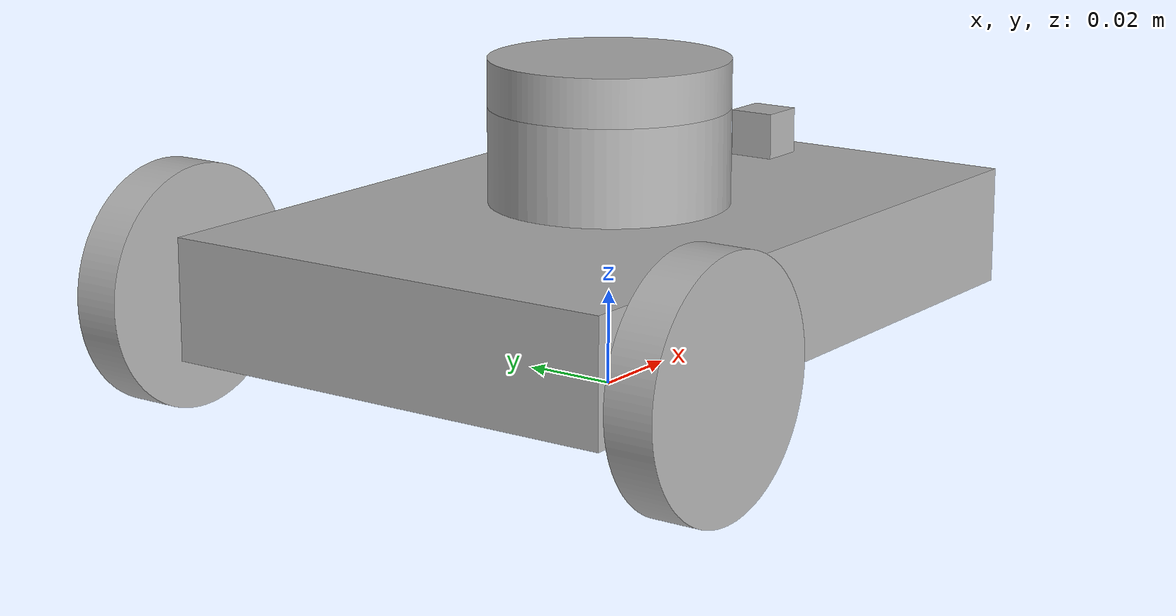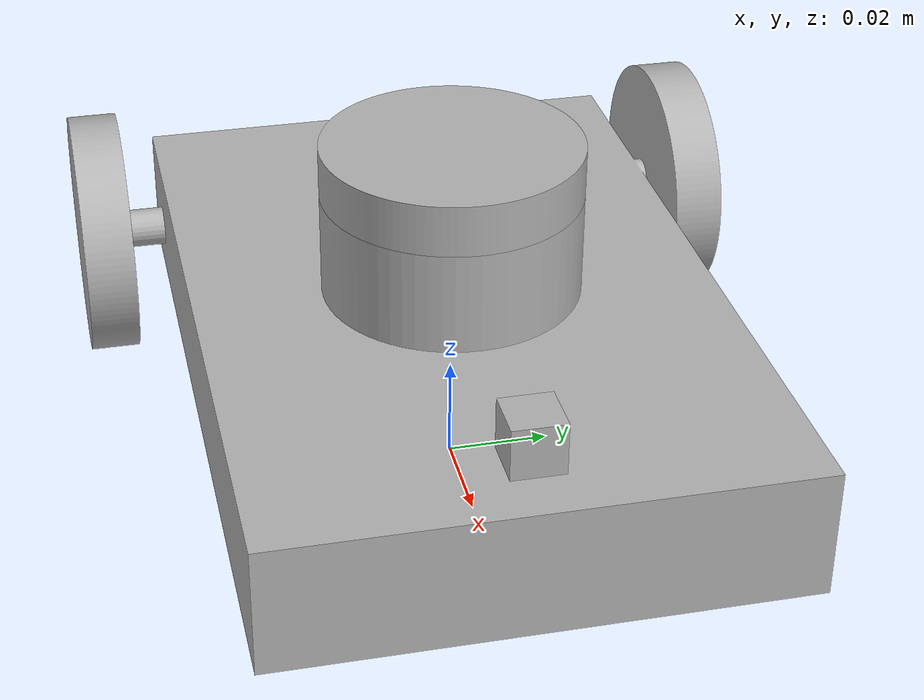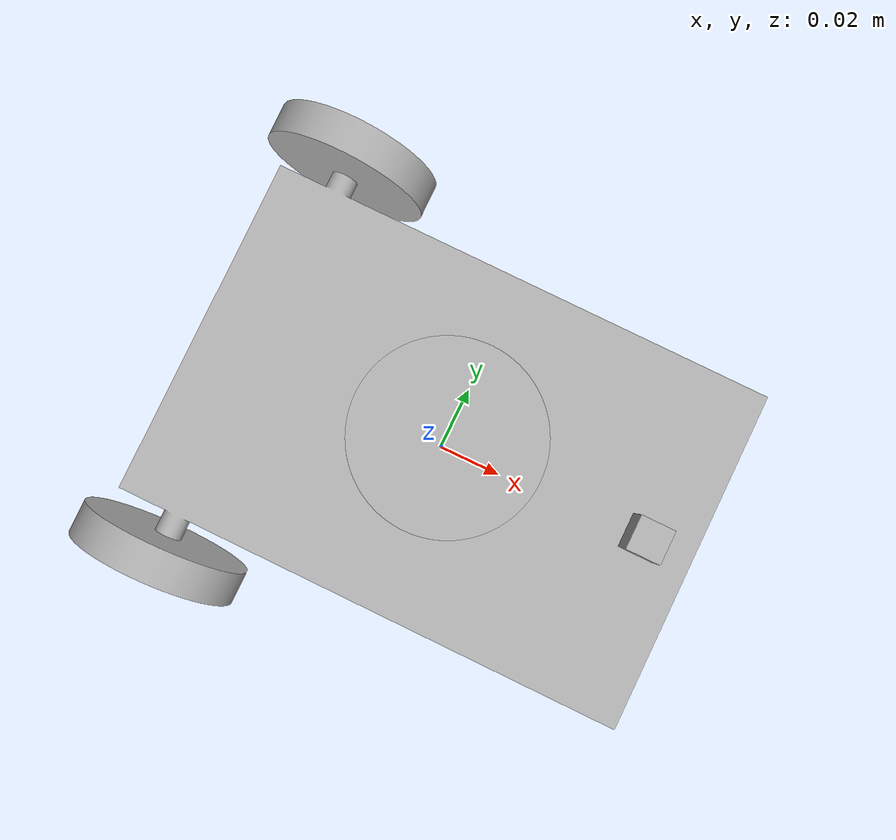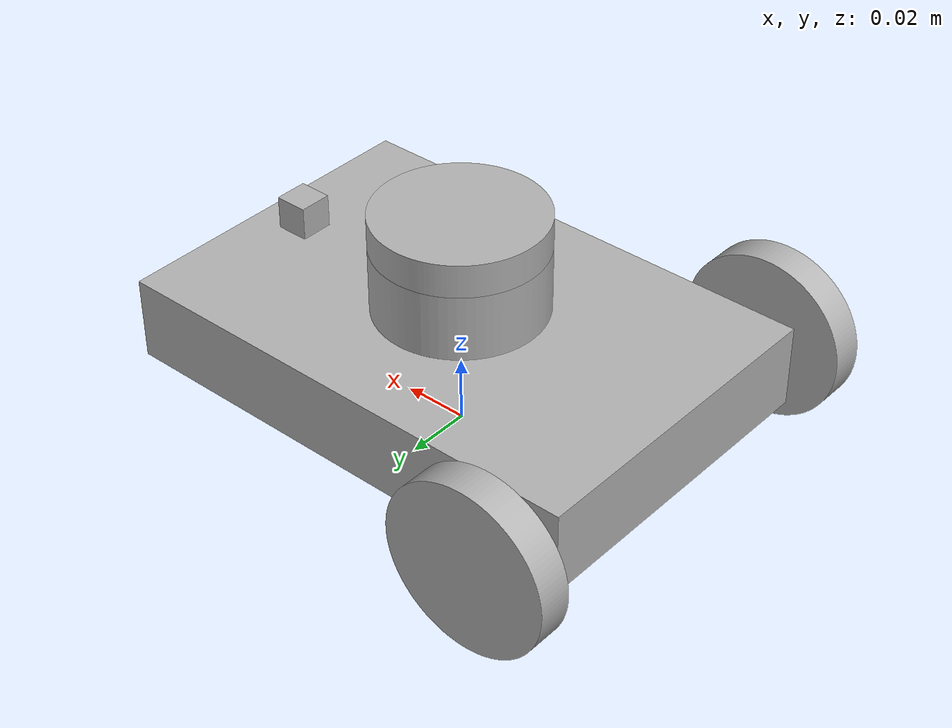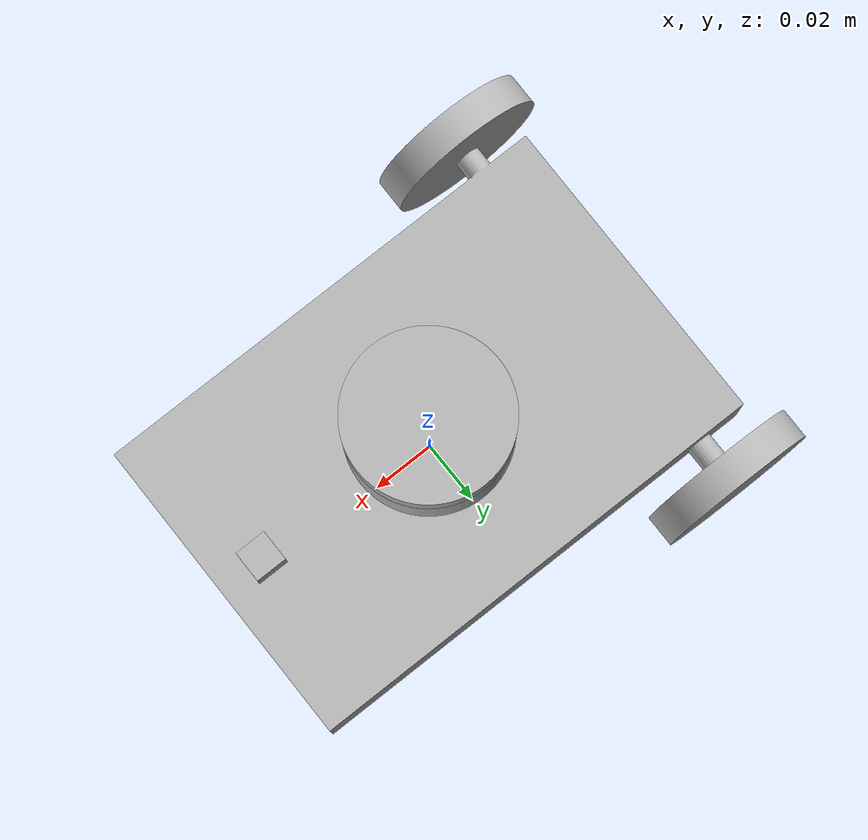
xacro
<?xml version="1.0" ?>
<robot name="squarobot_min" xmlns:xacro="http://www.ros.org/wiki/xacro">

<xacro:include filename="$(find squarobot_min_description)/urdf/materials.xacro" />
<xacro:include filename="$(find squarobot_min_description)/urdf/squarobot_min.trans" />
<xacro:include filename="$(find squarobot_min_description)/urdf/squarobot_min.gazebo" />
<link name="base_link">
  <inertial>
    <origin xyz="-0.00011625600504186132 1.0955809809750335e-17 0.028625804629664083" rpy="0 0 0"/>
    <mass value="3.2583321237301512"/>
    <inertia ixx="0.002825" iyy="0.005895" izz="0.00811" ixy="-0.0" iyz="0.0" ixz="-1e-06"/>
  </inertial>
  <visual>
    <origin xyz="0 0 0" rpy="0 0 0"/>
    <geometry>
      <mesh filename="file://$(find squarobot_min_description)/meshes/base_link.stl" scale="0.001 0.001 0.001"/>
    </geometry>
    <material name="silver"/>
  </visual>
  <collision>
    <origin xyz="0 0 0" rpy="0 0 0"/>
    <geometry>
      <mesh filename="file://$(find squarobot_min_description)/meshes/base_link.stl" scale="0.001 0.001 0.001"/>
    </geometry>
  </collision>
</link>

<link name="lidar_1">
  <inertial>
    <origin xyz="-3.618764437576268e-18 -7.237528875152536e-18 0.0050000000000000044" rpy="0 0 0"/>
    <mass value="0.1541343895667492"/>
    <inertia ixx="2.5e-05" iyy="2.5e-05" izz="4.8e-05" ixy="-0.0" iyz="-0.0" ixz="-0.0"/>
  </inertial>
  <visual>
    <origin xyz="-0.0 -0.0 -0.059" rpy="0 0 0"/>
    <geometry>
      <mesh filename="file://$(find squarobot_min_description)/meshes/lidar_1.stl" scale="0.001 0.001 0.001"/>
    </geometry>
    <material name="silver"/>
  </visual>
  <collision>
    <origin xyz="-0.0 -0.0 -0.059" rpy="0 0 0"/>
    <geometry>
      <mesh filename="file://$(find squarobot_min_description)/meshes/lidar_1.stl" scale="0.001 0.001 0.001"/>
    </geometry>
  </collision>
</link>

<link name="camera_1">
  <inertial>
    <origin xyz="-0.015 0.0 0.0050000000000000044" rpy="0 0 0"/>
    <mass value="0.00785"/>
    <inertia ixx="0.0" iyy="0.0" izz="0.0" ixy="0.0" iyz="0.0" ixz="-0.0"/>
  </inertial>
  <visual>
    <origin xyz="-0.075 -0.0 -0.039" rpy="0 0 0"/>
    <geometry>
      <mesh filename="file://$(find squarobot_min_description)/meshes/camera_1.stl" scale="0.001 0.001 0.001"/>
    </geometry>
    <material name="silver"/>
  </visual>
  <collision>
    <origin xyz="-0.075 -0.0 -0.039" rpy="0 0 0"/>
    <geometry>
      <mesh filename="file://$(find squarobot_min_description)/meshes/camera_1.stl" scale="0.001 0.001 0.001"/>
    </geometry>
  </collision>
</link>

<link name="caster_1">
  <inertial>
    <origin xyz="0.05 0.0 -0.005593749999999998" rpy="0 0 0"/>
    <mass value="0.026305602486058535"/>
    <inertia ixx="1e-06" iyy="1e-06" izz="1e-06" ixy="0.0" iyz="-0.0" ixz="0.0"/>
  </inertial>
  <visual>
    <origin xyz="-0.0 -0.0 -0.014" rpy="0 0 0"/>
    <geometry>
      <mesh filename="file://$(find squarobot_min_description)/meshes/caster_1.stl" scale="0.001 0.001 0.001"/>
    </geometry>
    <material name="silver"/>
  </visual>
  <collision>
    <origin xyz="-0.0 -0.0 -0.014" rpy="0 0 0"/>
    <geometry>
      <mesh filename="file://$(find squarobot_min_description)/meshes/caster_1.stl" scale="0.001 0.001 0.001"/>
    </geometry>
  </collision>
</link>

<link name="right_wheel_1">
  <inertial>
    <origin xyz="1.3877787807814457e-17 -0.004999999999999984 0.0" rpy="0 0 0"/>
    <mass value="0.15413438956674924"/>
    <inertia ixx="2.5e-05" iyy="4.8e-05" izz="2.5e-05" ixy="0.0" iyz="-0.0" ixz="0.0"/>
  </inertial>
  <visual>
    <origin xyz="0.06 0.058 -0.025" rpy="0 0 0"/>
    <geometry>
      <mesh filename="file://$(find squarobot_min_description)/meshes/right_wheel_1.stl" scale="0.001 0.001 0.001"/>
    </geometry>
    <material name="silver"/>
  </visual>
  <collision>
    <origin xyz="0.06 0.058 -0.025" rpy="0 0 0"/>
    <geometry>
      <mesh filename="file://$(find squarobot_min_description)/meshes/right_wheel_1.stl" scale="0.001 0.001 0.001"/>
    </geometry>
  </collision>
</link>

<link name="left_wheel_1">
  <inertial>
    <origin xyz="1.3877787807814457e-17 0.0049999999999999975 0.0" rpy="0 0 0"/>
    <mass value="0.15413438956674924"/>
    <inertia ixx="2.5e-05" iyy="4.8e-05" izz="2.5e-05" ixy="-0.0" iyz="0.0" ixz="0.0"/>
  </inertial>
  <visual>
    <origin xyz="0.06 -0.058 -0.025" rpy="0 0 0"/>
    <geometry>
      <mesh filename="file://$(find squarobot_min_description)/meshes/left_wheel_1.stl" scale="0.001 0.001 0.001"/>
    </geometry>
    <material name="silver"/>
  </visual>
  <collision>
    <origin xyz="0.06 -0.058 -0.025" rpy="0 0 0"/>
    <geometry>
      <mesh filename="file://$(find squarobot_min_description)/meshes/left_wheel_1.stl" scale="0.001 0.001 0.001"/>
    </geometry>
  </collision>
</link>

<joint name="lidar_joint" type="fixed">
  <origin xyz="0.0 0.0 0.059" rpy="0 0 0"/>
  <parent link="base_link"/>
  <child link="lidar_1"/>
</joint>

<joint name="camera_joint" type="fixed">
  <origin xyz="0.075 0.0 0.039" rpy="0 0 0"/>
  <parent link="base_link"/>
  <child link="camera_1"/>
</joint>

<joint name="caster_joint" type="fixed">
  <origin xyz="0.0 0.0 0.014" rpy="0 0 0"/>
  <parent link="base_link"/>
  <child link="caster_1"/>
</joint>

<joint name="right_wheel_joint" type="continuous">
  <origin xyz="-0.06 -0.058 0.025" rpy="0 0 0"/>
  <parent link="base_link"/>
  <child link="right_wheel_1"/>
  <axis xyz="0.0 1.0 0.0"/>
</joint>

<joint name="left_wheel_joint" type="continuous">
  <origin xyz="-0.06 0.058 0.025" rpy="0 0 0"/>
  <parent link="base_link"/>
  <child link="left_wheel_1"/>
  <axis xyz="0.0 1.0 0.0"/>
</joint>

</robot>

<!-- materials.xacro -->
<robot name="squarobot_min" xmlns:xacro="http://www.ros.org/wiki/xacro" >

<material name="silver">
  <color rgba="0.700 0.700 0.700 1.000"/>
</material>

</robot>

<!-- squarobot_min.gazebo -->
<robot name="squarobot_min" xmlns:xacro="http://www.ros.org/wiki/xacro" >

<xacro:property name="body_color" value="Gazebo/Silver" />

<gazebo>
  <plugin name="control" filename="libgazebo_ros_control.so"/>
</gazebo>
<gazebo reference="base_link">
  <material>${body_color}</material>
  <mu1>0.2</mu1>
  <mu2>0.2</mu2>
  <self_collide>true</self_collide>
  <gravity>true</gravity>
</gazebo>

<gazebo reference="lidar_1">
  <material>${body_color}</material>
  <mu1>0.2</mu1>
  <mu2>0.2</mu2>
  <self_collide>true</self_collide>
</gazebo>

<gazebo reference="camera_1">
  <material>${body_color}</material>
  <mu1>0.2</mu1>
  <mu2>0.2</mu2>
  <self_collide>true</self_collide>
</gazebo>

<gazebo reference="caster_1">
  <material>${body_color}</material>
  <mu1>0.0001</mu1>
  <mu2>0.0001</mu2>
  <self_collide>true</self_collide>
</gazebo>

<gazebo reference="right_wheel_1">
  <material>${body_color}</material>
  <mu1>1</mu1>
  <mu2>1</mu2>
  <self_collide>true</self_collide>
</gazebo>

<gazebo reference="left_wheel_1">
  <material>${body_color}</material>
  <mu1>1</mu1>
  <mu2>1</mu2>
  <self_collide>true</self_collide>
</gazebo>

<gazebo reference="lidar_1">
	<sensor name="ydlidar" type="ray">
		<always_on>true</always_on>
		<visualize>false</visualize>
		<update_rate>10</update_rate>
		<ray>
		<scan>
			<horizontal>
			<samples>720</samples>
			<resolution>1.000000</resolution>
			<min_angle>-3.14</min_angle>
			<max_angle>3.14</max_angle>
			</horizontal>
		</scan>
		<range>
			<min>0.05</min>
			<max>12.0</max>
			<resolution>0.015000</resolution>
		</range>
		<noise>
			<type>gaussian</type>
			<mean>0.0</mean>
			<stddev>0.01</stddev>
		</noise>
		</ray>
		<plugin name="scan" filename="libgazebo_ros_ray_sensor.so">
		<ros>
			<remapping>~/out:=scan</remapping>
		</ros>
		<output_type>sensor_msgs/LaserScan</output_type>
		<frame_name>lidar_1</frame_name>
		</plugin>
	</sensor>
	</gazebo>

<!-- Differential drive plugin for gazebo -->
<gazebo>
<plugin name='diff_drive' filename='libgazebo_ros_diff_drive.so'>
	<ros>
	</ros>

		<!-- wheels -->
	<left_joint>left_wheel_joint</left_joint>
	<right_joint>right_wheel_joint</right_joint>

		<!-- kinematics -->
	<wheel_separation>0.08</wheel_separation>
	<wheel_diameter>0.05</wheel_diameter>

		<!-- limits -->
	<max_wheel_torque>20</max_wheel_torque>
	<max_wheel_acceleration>1.0</max_wheel_acceleration>

		<!-- output -->
	<publish_odom>true</publish_odom>
	<publish_odom_tf>true</publish_odom_tf>
	<publish_wheel_tf>true</publish_wheel_tf>

	<odometry_frame>odom</odometry_frame>
	<robot_base_frame>base_link</robot_base_frame>
</plugin>
</gazebo>

<gazebo reference="camera_1">
    <sensor type="camera" name="camera">
      <update_rate>30.0</update_rate>
      <camera name="head">
        <horizontal_fov>1.3962634</horizontal_fov>
        <image>
          <width>800</width>
          <height>800</height>
          <format>R8G8B8</format>
        </image>
        <clip>
          <near>0.02</near>
          <far>300</far>
        </clip>
        <noise>
          <type>gaussian</type>
          <!-- Noise is sampled independently per pixel on each frame.
               That pixel's noise value is added to each of its color
               channels, which at that point lie in the range [0,1]. -->
          <mean>0.0</mean>
          <stddev>0.007</stddev>
        </noise>
      </camera>
      <plugin name="camera_controller" filename="libgazebo_ros_camera.so">
        <alwaysOn>true</alwaysOn>
        <updateRate>0.0</updateRate>
        <cameraName>camera</cameraName>
        <imageTopicName>image_raw</imageTopicName>
        <cameraInfoTopicName>camera_info</cameraInfoTopicName>
        <frameName>camera_frame</frameName>
        <hackBaseline>0.07</hackBaseline>
        <distortionK1>0.0</distortionK1>
        <distortionK2>0.0</distortionK2>
        <distortionK3>0.0</distortionK3>
        <distortionT1>0.0</distortionT1>
        <distortionT2>0.0</distortionT2>
      </plugin>
    </sensor>
</gazebo>

</robot>
